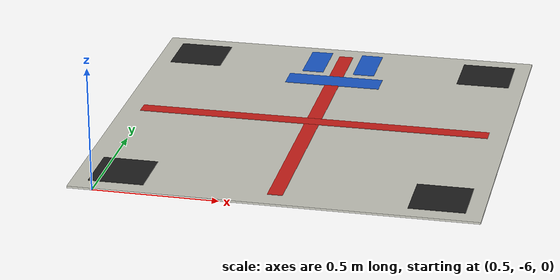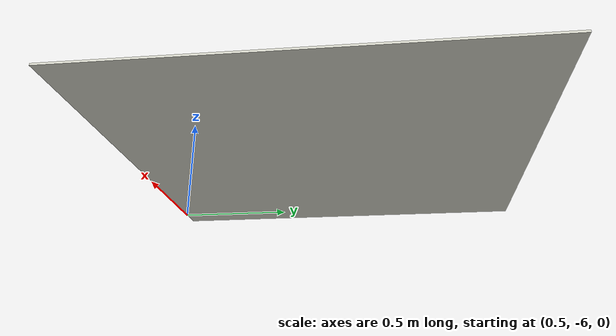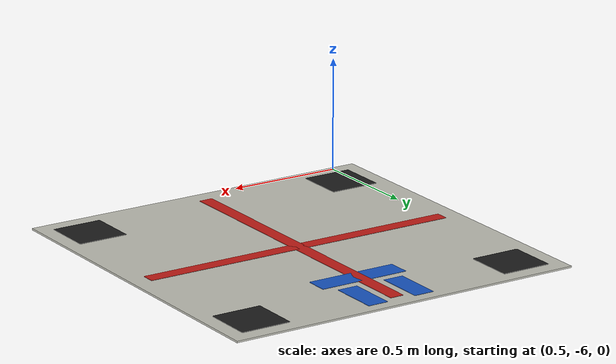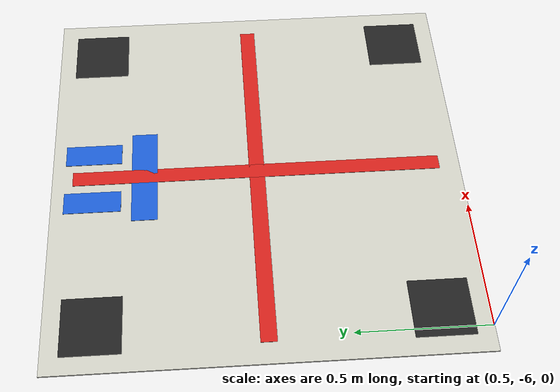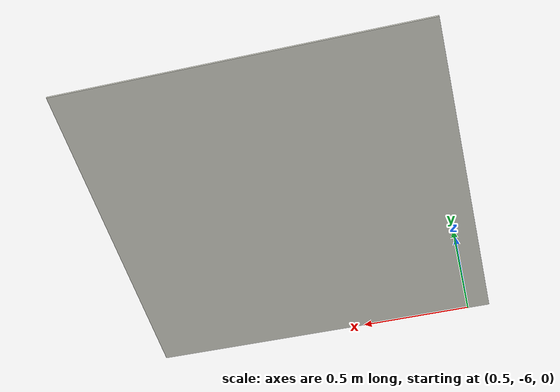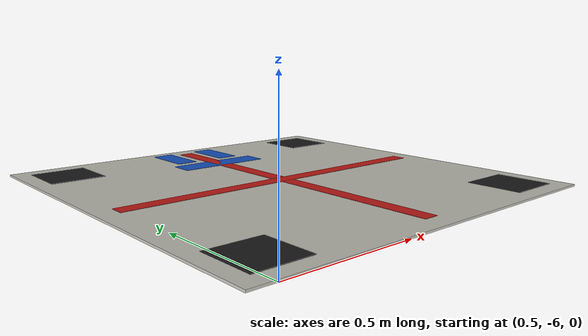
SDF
<?xml version="1.0"?>
<sdf version="1.6">
  <model name="start_pad">
    <static>true</static>
    <link name="link">
      <visual name="pad">
        <pose>1.2000 -5.2000 0.0040 0 0 1.5708</pose>
        <cast_shadows>false</cast_shadows>
        <geometry><box><size>1.600 1.600 0.008</size></box></geometry>
        <material><ambient>0.78 0.78 0.74 1</ambient><diffuse>0.78 0.78 0.74 1</diffuse></material>
      </visual>
      <visual name="cross_x">
        <pose>1.2000 -5.2000 0.0060 0 0 1.5708</pose>
        <cast_shadows>false</cast_shadows>
        <geometry><box><size>1.440 0.060 0.008</size></box></geometry>
        <material><ambient>0.80 0.12 0.10 1</ambient><diffuse>0.80 0.12 0.10 1</diffuse></material>
      </visual>
      <visual name="cross_y">
        <pose>1.2000 -5.2000 0.0060 0 0 1.5708</pose>
        <cast_shadows>false</cast_shadows>
        <geometry><box><size>0.060 1.440 0.008</size></box></geometry>
        <material><ambient>0.80 0.12 0.10 1</ambient><diffuse>0.80 0.12 0.10 1</diffuse></material>
      </visual>
      <visual name="arrow">
        <pose>1.2000 -4.7600 0.0060 0 0 1.5708</pose>
        <cast_shadows>false</cast_shadows>
        <geometry><box><size>0.100 0.400 0.008</size></box></geometry>
        <material><ambient>0.10 0.35 0.80 1</ambient><diffuse>0.10 0.35 0.80 1</diffuse></material>
      </visual>
      <visual name="arrow_l">
        <pose>1.0900 -4.5600 0.0060 0 0 1.5708</pose>
        <cast_shadows>false</cast_shadows>
        <geometry><box><size>0.220 0.090 0.008</size></box></geometry>
        <material><ambient>0.10 0.35 0.80 1</ambient><diffuse>0.10 0.35 0.80 1</diffuse></material>
      </visual>
      <visual name="arrow_r">
        <pose>1.3100 -4.5600 0.0060 0 0 1.5708</pose>
        <cast_shadows>false</cast_shadows>
        <geometry><box><size>0.220 0.090 0.008</size></box></geometry>
        <material><ambient>0.10 0.35 0.80 1</ambient><diffuse>0.10 0.35 0.80 1</diffuse></material>
      </visual>
      <visual name="corner_0">
        <pose>0.5760 -5.8240 0.0060 0 0 1.5708</pose>
        <cast_shadows>false</cast_shadows>
        <geometry><box><size>0.220 0.220 0.008</size></box></geometry>
        <material><ambient>0.12 0.12 0.12 1</ambient><diffuse>0.12 0.12 0.12 1</diffuse></material>
      </visual>
      <visual name="corner_1">
        <pose>0.5760 -4.5760 0.0060 0 0 1.5708</pose>
        <cast_shadows>false</cast_shadows>
        <geometry><box><size>0.220 0.220 0.008</size></box></geometry>
        <material><ambient>0.12 0.12 0.12 1</ambient><diffuse>0.12 0.12 0.12 1</diffuse></material>
      </visual>
      <visual name="corner_2">
        <pose>1.8240 -5.8240 0.0060 0 0 1.5708</pose>
        <cast_shadows>false</cast_shadows>
        <geometry><box><size>0.220 0.220 0.008</size></box></geometry>
        <material><ambient>0.12 0.12 0.12 1</ambient><diffuse>0.12 0.12 0.12 1</diffuse></material>
      </visual>
      <visual name="corner_3">
        <pose>1.8240 -4.5760 0.0060 0 0 1.5708</pose>
        <cast_shadows>false</cast_shadows>
        <geometry><box><size>0.220 0.220 0.008</size></box></geometry>
        <material><ambient>0.12 0.12 0.12 1</ambient><diffuse>0.12 0.12 0.12 1</diffuse></material>
      </visual>
    </link>
  </model>
</sdf>
